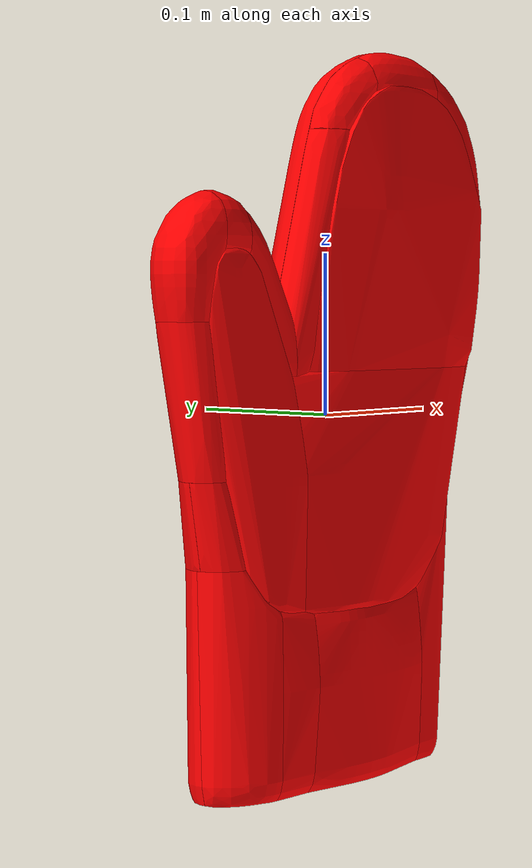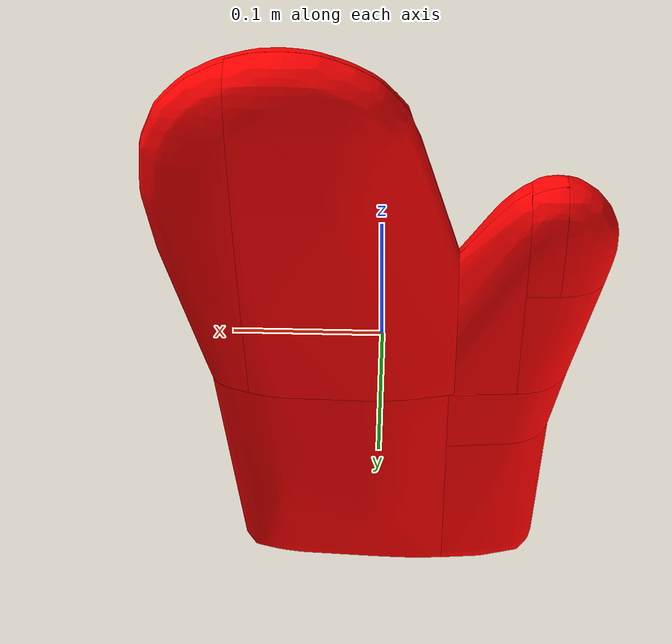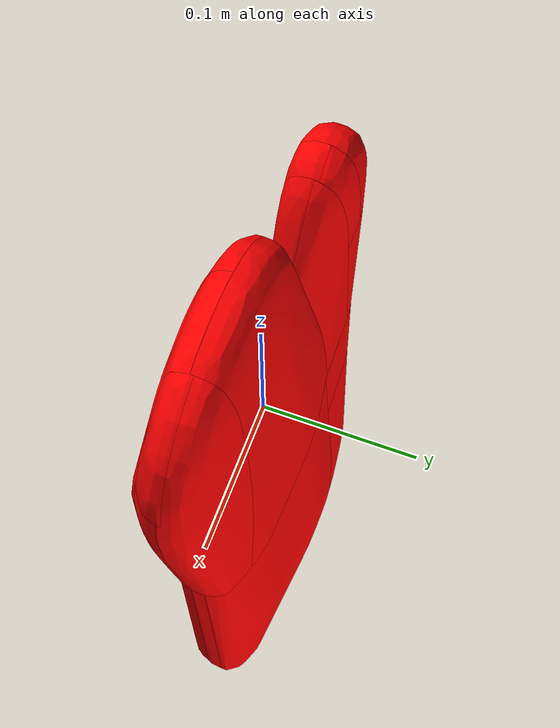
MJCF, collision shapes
<?xml version="1.0" ?>
<mujoco model="oven_mitt">
	<compiler meshdir="oven_mitt/meshes" texturedir="oven_mitt/textures" angle="radian" autolimits="true" balanceinertia="true" boundmass="0.000001" boundinertia="0.000001"/>
	<default>
		<default class="visual">
			<geom contype="0" conaffinity="0"/>
		</default>
		<default class="collision">
			<geom rgba="1.0 0.0 0.0 0.0"/>
		</default>
	</default>
	<asset>
		<mesh name="OvenMittCloth" file="obj/OvenMittCloth.obj" scale="1.0 1.0 1.0"/>
		<mesh name="OvenMittCloth_001" file="stl/OvenMittCloth_001.stl" scale="1.0 1.0 1.0"/>
		<mesh name="OvenMittCloth_002" file="stl/OvenMittCloth_002.stl" scale="1.0 1.0 1.0"/>
		<mesh name="OvenMittCloth_003" file="stl/OvenMittCloth_003.stl" scale="1.0 1.0 1.0"/>
		<mesh name="OvenMittCloth_004" file="stl/OvenMittCloth_004.stl" scale="1.0 1.0 1.0"/>
		<mesh name="OvenMittCloth_005" file="stl/OvenMittCloth_005.stl" scale="1.0 1.0 1.0"/>
		<mesh name="OvenMittCloth_006" file="stl/OvenMittCloth_006.stl" scale="1.0 1.0 1.0"/>
		<mesh name="OvenMittCloth_007" file="stl/OvenMittCloth_007.stl" scale="1.0 1.0 1.0"/>
		<mesh name="OvenMittCloth_008" file="stl/OvenMittCloth_008.stl" scale="1.0 1.0 1.0"/>
		<mesh name="OvenMittCloth_009" file="stl/OvenMittCloth_009.stl" scale="1.0 1.0 1.0"/>
		<mesh name="OvenMittCloth_010" file="stl/OvenMittCloth_010.stl" scale="1.0 1.0 1.0"/>
		<mesh name="OvenMittCloth_011" file="stl/OvenMittCloth_011.stl" scale="1.0 1.0 1.0"/>
		<mesh name="OvenMittCloth_012" file="stl/OvenMittCloth_012.stl" scale="1.0 1.0 1.0"/>
		<mesh name="OvenMittCloth_013" file="stl/OvenMittCloth_013.stl" scale="1.0 1.0 1.0"/>
		<mesh name="OvenMittCloth_014" file="stl/OvenMittCloth_014.stl" scale="1.0 1.0 1.0"/>
		<mesh name="OvenMittCloth_015" file="stl/OvenMittCloth_015.stl" scale="1.0 1.0 1.0"/>
		<mesh name="OvenMittCloth_016" file="stl/OvenMittCloth_016.stl" scale="1.0 1.0 1.0"/>
		<mesh name="OvenMittCloth_017" file="stl/OvenMittCloth_017.stl" scale="1.0 1.0 1.0"/>
		<mesh name="OvenMittCloth_018" file="stl/OvenMittCloth_018.stl" scale="1.0 1.0 1.0"/>
		<mesh name="OvenMittCloth_019" file="stl/OvenMittCloth_019.stl" scale="1.0 1.0 1.0"/>
		<mesh name="OvenMittCloth_020" file="stl/OvenMittCloth_020.stl" scale="1.0 1.0 1.0"/>
		<mesh name="OvenMittCloth_021" file="stl/OvenMittCloth_021.stl" scale="1.0 1.0 1.0"/>
		<mesh name="OvenMittCloth_022" file="stl/OvenMittCloth_022.stl" scale="1.0 1.0 1.0"/>
		<mesh name="OvenMittCloth_023" file="stl/OvenMittCloth_023.stl" scale="1.0 1.0 1.0"/>
		<mesh name="OvenMittCloth_024" file="stl/OvenMittCloth_024.stl" scale="1.0 1.0 1.0"/>
		<mesh name="OvenMittCloth_025" file="stl/OvenMittCloth_025.stl" scale="1.0 1.0 1.0"/>
		<mesh name="OvenMittCloth_026" file="stl/OvenMittCloth_026.stl" scale="1.0 1.0 1.0"/>
		<mesh name="OvenMittCloth_027" file="stl/OvenMittCloth_027.stl" scale="1.0 1.0 1.0"/>
		<mesh name="OvenMittSkin" file="stl/OvenMittSkin.stl" scale="1.0 1.0 1.0"/>
		<mesh name="OvenMittSkin_001" file="stl/OvenMittSkin_001.stl" scale="1.0 1.0 1.0"/>
		<mesh name="OvenMittSkin_002" file="stl/OvenMittSkin_002.stl" scale="1.0 1.0 1.0"/>
		<mesh name="OvenMittSkin_003" file="stl/OvenMittSkin_003.stl" scale="1.0 1.0 1.0"/>
		<material name="M_OvenMittCloth" texture="T_OvenMittCloth"/>
		<material name="M_OvenMittSkin" rgba="0.5893999934196472 0.6273999810218811 0.6367999911308289 1.0" emission="0.0"/>
		<texture name="T_OvenMittCloth" type="2d" file="T_OvenMittCloth.png"/>
	</asset>
	<worldbody>
		<body name="oven_mitt" pos="0.0 0.0 0.0" quat="1.0 0.0 0.0 0.0">
			<body name="oven_mitt_cloth" pos="0.0 0.0 0.0" quat="1.0 0.0 0.0 0.0">
				<inertial mass="3.296433448791504" pos="0.008266645483672619 0.00631155027076602 -0.02526518516242504" quat="0.46586939692497253 0.4444926381111145 0.5485215783119202 -0.5334004759788513" diaginertia="0.015979763120412827 0.04791974276304245 0.062468480318784714"/>
				<geom name="OvenMittCloth" type="mesh" pos="0.0 0.0 0.0" quat="1.0 0.0 0.0 0.0" mesh="OvenMittCloth" material="M_OvenMittCloth" class="visual"/>
				<geom name="OvenMittCloth_001" type="mesh" pos="0.0 0.0 0.0" quat="1.0 0.0 0.0 0.0" mesh="OvenMittCloth_001" class="collision"/>
				<geom name="OvenMittCloth_002" type="mesh" pos="0.0 0.0 0.0" quat="1.0 0.0 0.0 0.0" mesh="OvenMittCloth_002" class="collision"/>
				<geom name="OvenMittCloth_003" type="mesh" pos="0.0 0.0 0.0" quat="1.0 0.0 0.0 0.0" mesh="OvenMittCloth_003" class="collision"/>
				<geom name="OvenMittCloth_004" type="mesh" pos="0.0 0.0 0.0" quat="1.0 0.0 0.0 0.0" mesh="OvenMittCloth_004" class="collision"/>
				<geom name="OvenMittCloth_005" type="mesh" pos="0.0 0.0 0.0" quat="1.0 0.0 0.0 0.0" mesh="OvenMittCloth_005" class="collision"/>
				<geom name="OvenMittCloth_006" type="mesh" pos="0.0 0.0 0.0" quat="1.0 0.0 0.0 0.0" mesh="OvenMittCloth_006" class="collision"/>
				<geom name="OvenMittCloth_007" type="mesh" pos="0.0 0.0 0.0" quat="1.0 0.0 0.0 0.0" mesh="OvenMittCloth_007" class="collision"/>
				<geom name="OvenMittCloth_008" type="mesh" pos="0.0 0.0 0.0" quat="1.0 0.0 0.0 0.0" mesh="OvenMittCloth_008" class="collision"/>
				<geom name="OvenMittCloth_009" type="mesh" pos="0.0 0.0 0.0" quat="1.0 0.0 0.0 0.0" mesh="OvenMittCloth_009" class="collision"/>
				<geom name="OvenMittCloth_010" type="mesh" pos="0.0 0.0 0.0" quat="1.0 0.0 0.0 0.0" mesh="OvenMittCloth_010" class="collision"/>
				<geom name="OvenMittCloth_011" type="mesh" pos="0.0 0.0 0.0" quat="1.0 0.0 0.0 0.0" mesh="OvenMittCloth_011" class="collision"/>
				<geom name="OvenMittCloth_012" type="mesh" pos="0.0 0.0 0.0" quat="1.0 0.0 0.0 0.0" mesh="OvenMittCloth_012" class="collision"/>
				<geom name="OvenMittCloth_013" type="mesh" pos="0.0 0.0 0.0" quat="1.0 0.0 0.0 0.0" mesh="OvenMittCloth_013" class="collision"/>
				<geom name="OvenMittCloth_014" type="mesh" pos="0.0 0.0 0.0" quat="1.0 0.0 0.0 0.0" mesh="OvenMittCloth_014" class="collision"/>
				<geom name="OvenMittCloth_015" type="mesh" pos="0.0 0.0 0.0" quat="1.0 0.0 0.0 0.0" mesh="OvenMittCloth_015" class="collision"/>
				<geom name="OvenMittCloth_016" type="mesh" pos="0.0 0.0 0.0" quat="1.0 0.0 0.0 0.0" mesh="OvenMittCloth_016" class="collision"/>
				<geom name="OvenMittCloth_017" type="mesh" pos="0.0 0.0 0.0" quat="1.0 0.0 0.0 0.0" mesh="OvenMittCloth_017" class="collision"/>
				<geom name="OvenMittCloth_018" type="mesh" pos="0.0 0.0 0.0" quat="1.0 0.0 0.0 0.0" mesh="OvenMittCloth_018" class="collision"/>
				<geom name="OvenMittCloth_019" type="mesh" pos="0.0 0.0 0.0" quat="1.0 0.0 0.0 0.0" mesh="OvenMittCloth_019" class="collision"/>
				<geom name="OvenMittCloth_020" type="mesh" pos="0.0 0.0 0.0" quat="1.0 0.0 0.0 0.0" mesh="OvenMittCloth_020" class="collision"/>
				<geom name="OvenMittCloth_021" type="mesh" pos="0.0 0.0 0.0" quat="1.0 0.0 0.0 0.0" mesh="OvenMittCloth_021" class="collision"/>
				<geom name="OvenMittCloth_022" type="mesh" pos="0.0 0.0 0.0" quat="1.0 0.0 0.0 0.0" mesh="OvenMittCloth_022" class="collision"/>
				<geom name="OvenMittCloth_023" type="mesh" pos="0.0 0.0 0.0" quat="1.0 0.0 0.0 0.0" mesh="OvenMittCloth_023" class="collision"/>
				<geom name="OvenMittCloth_024" type="mesh" pos="0.0 0.0 0.0" quat="1.0 0.0 0.0 0.0" mesh="OvenMittCloth_024" class="collision"/>
				<geom name="OvenMittCloth_025" type="mesh" pos="0.0 0.0 0.0" quat="1.0 0.0 0.0 0.0" mesh="OvenMittCloth_025" class="collision"/>
				<geom name="OvenMittCloth_026" type="mesh" pos="0.0 0.0 0.0" quat="1.0 0.0 0.0 0.0" mesh="OvenMittCloth_026" class="collision"/>
				<geom name="OvenMittCloth_027" type="mesh" pos="0.0 0.0 0.0" quat="1.0 0.0 0.0 0.0" mesh="OvenMittCloth_027" class="collision"/>
			</body>
			<body name="oven_mitt_skin" pos="0.0 0.0 0.0" quat="1.0 0.0 0.0 0.0">
				<inertial mass="1.1743172407150269" pos="0.018886398524045944 -0.01621830463409424 0.02312811091542244" quat="-0.5971135497093201 0.6099449992179871 0.341251939535141 0.39366182684898376" diaginertia="0.0035743454936891794 0.010408329777419567 0.013392816297709942"/>
				<geom name="OvenMittSkin" type="mesh" pos="0.0 0.0 0.0" quat="1.0 0.0 0.0 0.0" mesh="OvenMittSkin" material="M_OvenMittSkin" class="visual"/>
				<geom name="OvenMittSkin_001" type="mesh" pos="0.0 0.0 0.0" quat="1.0 0.0 0.0 0.0" mesh="OvenMittSkin_001" class="collision"/>
				<geom name="OvenMittSkin_002" type="mesh" pos="0.0 0.0 0.0" quat="1.0 0.0 0.0 0.0" mesh="OvenMittSkin_002" class="collision"/>
				<geom name="OvenMittSkin_003" type="mesh" pos="0.0 0.0 0.0" quat="1.0 0.0 0.0 0.0" mesh="OvenMittSkin_003" class="collision"/>
			</body>
		</body>
	</worldbody>
	<equality/>
</mujoco>
